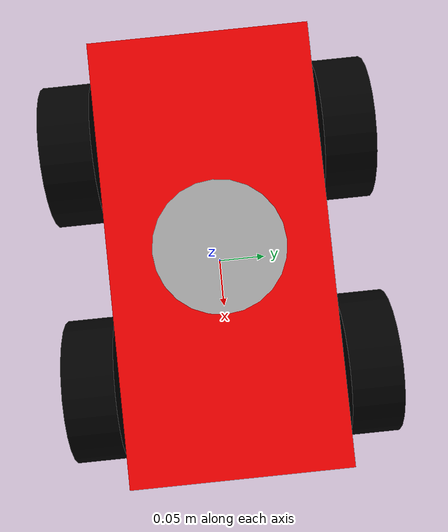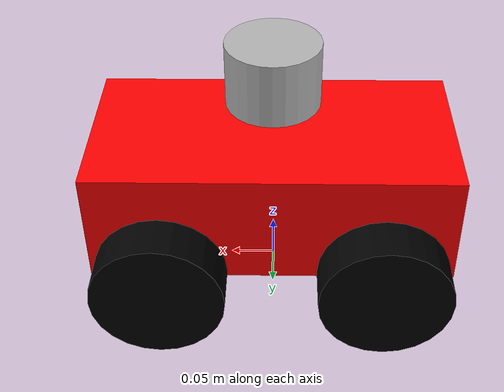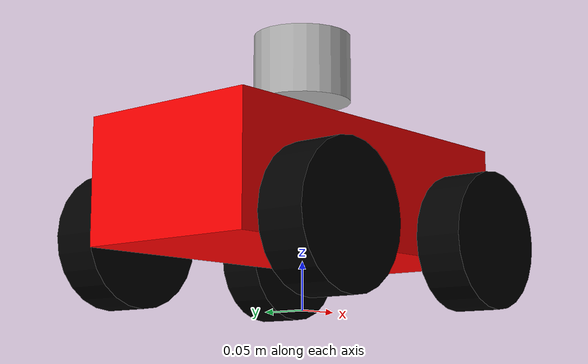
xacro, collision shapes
<?xml version="1.0"?>
<robot name="bot" xmlns:xacro="http://ros.org/wiki/xacro">

  <xacro:property name="base_length" value="0.400" />
  <xacro:property name="base_width" value="0.200" />
  <xacro:property name="base_height" value="0.129" />
  <xacro:property name="base_mass" value="10" />

  <xacro:property name="wheel_radius" value="0.07162" />
  <xacro:property name="wheel_width" value="0.05" />
  <xacro:property name="wheel_pos_x" value="0.120" />
  <xacro:property name="wheel_pos_y" value="0.1355" />
  <xacro:property name="wheel_pos_z" value="-0.04788" />
  <xacro:property name="wheel_mass" value=".6" />
  <xacro:property name="wheel_torque" value="20" />

  <xacro:include filename="$(find bot_description)/urdf/parts_urdf/base.urdf.xacro" />
  <xacro:include filename="$(find bot_description)/urdf/parts_urdf/wheel.urdf.xacro" />
  <xacro:include filename="$(find bot_description)/urdf/sensors/imu.urdf.xacro" />
  <xacro:include filename="$(find bot_description)/urdf/sensors/laser.urdf.xacro" />
  <xacro:include filename="$(find bot_description)/urdf/drivers/differential_drive.urdf.xacro" />

  <xacro:base
    length="${base_length}"
    width="${base_width}"
    height="${base_height}"
    mass="${base_mass}"
    wheel_radius="${wheel_radius}"
    wheel_pos_z="${wheel_pos_z}"
/>

  <xacro:wheel
    side="front_left"
    radius="${wheel_radius}"
    width="${wheel_width}"
    pos_x="${wheel_pos_x}"
    pos_y="${wheel_pos_y}"
    pos_z="${wheel_pos_z}"
    mass="${wheel_mass}"
  />

  <xacro:wheel
    side="front_right"
    radius="${wheel_radius}"
    width="${wheel_width}"
    pos_x="${wheel_pos_x}"
    pos_y="${-wheel_pos_y}"
    pos_z="${wheel_pos_z}"
    mass="${wheel_mass}"
  />
  <xacro:wheel
    side="rear_left"
    radius="${wheel_radius}"
    width="${wheel_width}"
    pos_x="${-wheel_pos_x}"
    pos_y="${wheel_pos_y}"
    pos_z="${wheel_pos_z}"
    mass="${wheel_mass}"
  />

  <xacro:wheel
    side="rear_right"
    radius="${wheel_radius}"
    width="${wheel_width}"
    pos_x="${-wheel_pos_x}"
    pos_y="${-wheel_pos_y}"
    pos_z="${wheel_pos_z}"
    mass="${wheel_mass}"
  />

  <xacro:imu/>

  <xacro:laser/>

  <xacro:diff_drive_controller
    wheel_separation="${wheel_pos_y * 2}"
    wheel_radius="${wheel_radius}"
    wheel_torque="${wheel_torque}"
  />
</robot>

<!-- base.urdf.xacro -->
<robot xmlns:xacro="http://ros.org/wiki/xacro">
  <xacro:macro name="base" params="length width height mass wheel_radius wheel_pos_z">
    <link name="base_footprint"/>

    <link name="base_link">
      <visual>
        <origin xyz="0 0 0" rpy="0 0 0"/>
        <geometry>
          <box size="${length} ${width} ${height}"/>
        </geometry>
        <material name="red">
          <color rgba="1.0 0.0 0.0 1.0"/>
        </material>
      </visual>

      <collision>
        <origin xyz="0 0 0" rpy="0 0 0"/>
        <geometry>
          <box size="${length} ${width} ${height}"/>
        </geometry>
      </collision>

      <inertial>
        <origin xyz="0 0 0" rpy="0 0 0"/>
        <mass value="${mass}"/>
        <inertia ixx="${(1/12) * mass * ((width  * width)  + (height * height))}" ixy="0.0" ixz="0.0"
                 iyy="${(1/12) * mass * ((length * length) + (height * height))}" iyz="0.0"
                 izz="${(1/12) * mass * ((length * length) + (width  * width))}"/>
      </inertial>
    </link>

    <gazebo reference="base_link">
        <material>Gazebo/Red</material>
    </gazebo>

    <joint name="base_to_footprint" type="fixed">
      <parent link="base_footprint"/>
      <child link="base_link"/>
      <origin xyz="0 0 ${wheel_radius - wheel_pos_z}" rpy="0 0 0"/>
    </joint>
  </xacro:macro>
</robot>

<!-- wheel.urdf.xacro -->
<robot xmlns:xacro="http://ros.org/wiki/xacro">
  <xacro:macro name="wheel" params="side radius width pos_x pos_y pos_z mass">
    <link name="${side}_wheel_link">
      <visual>
        <origin xyz="0 0 0" rpy="${pi/2} 0 0"/>
        <geometry>
          <cylinder radius="${radius}" length="${width}"/>
        </geometry>
        <material name="black">
            <color rgba="0.0 0.0 0.0 1.0"/>
        </material>
      </visual>
      <collision>
        <origin xyz="0 0 0" rpy="${pi/2} 0 0"/>
        <geometry>
          <cylinder radius="${radius}" length="${width}"/>
        </geometry>
      </collision>

      <inertial>
        <origin xyz="0 0 0" rpy="0 0 0"/>
        <mass value="${mass}"/>
        <inertia ixx="${(2/5) * mass * (radius * radius)}" ixy="0" ixz="0"
                 iyy="${(2/5) * mass * (radius * radius)}" iyz="0"
                 izz="${(2/5) * mass * (radius * radius)}" />
      </inertial>
    </link>

    <gazebo reference="${side}_wheel_link">
        <material>Gazebo/Black</material>
    </gazebo>

    <joint name="${side}_wheel_joint" type="continuous">
      <axis xyz="0 1 0" />
      <parent link="base_link"/>
      <child link="${side}_wheel_link"/>
      <origin xyz="${pos_x} ${pos_y} ${pos_z}" rpy="0 0 0"/>
    </joint>
  </xacro:macro>
</robot>

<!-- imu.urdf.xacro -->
<robot xmlns:xacro="http://ros.org/wiki/xacro">
  <xacro:macro name="imu">
    <link name="imu_link"/>

    <joint name="imu_to_base_link" type="fixed">
      <parent link="base_link"/>
      <child link="imu_link"/>
      <origin xyz="0 0 0" rpy="0 0 0"/>
    </joint>

    <gazebo reference="imu_link">
      <gravity>true</gravity>
      <sensor name="imu_sensor" type="imu">
      <always_on>true</always_on>
      <update_rate>20</update_rate>
      <visualize>true</visualize>
      <topic>__default_topic__</topic>
      <plugin filename="libgazebo_ros_imu_sensor.so" name="imu_plugin">
          <ros>
            <remapping>~/out:=imu/data</remapping>
          </ros>
          <topicName>imu/data</topicName>
          <bodyName>imu_link</bodyName>
          <updateRateHZ>10.0</updateRateHZ>
          <gaussianNoise>0.0</gaussianNoise>
          <xyzOffset>0 0 0</xyzOffset>
          <rpyOffset>0 0 0</rpyOffset>
          <frameName>imu_link</frameName>
          <initial_orientation_as_reference>false</initial_orientation_as_reference>
      </plugin>
      <pose>0 0 0 0 0 0</pose>
      </sensor>
    </gazebo>
  </xacro:macro>
</robot>

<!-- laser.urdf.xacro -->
<robot xmlns:xacro="http://ros.org/wiki/xacro">
  <xacro:include filename="$(find bot_description)/urdf/sensors/laser2d.urdf.xacro" />
  <xacro:include filename="$(find velodyne_description)/urdf/VLP-16.urdf.xacro" />
  <xacro:arg name="gpu" default="false"/>
  <xacro:property name="gpu" value="$(arg gpu)" />
  <xacro:arg name="organize_cloud" default="false"/>
  <xacro:property name="organize_cloud" value="$(arg organize_cloud)" />
  <xacro:macro name="laser">
    <xacro:VLP-16 parent="base_link" name="velodyne" topic="/velodyne_points" organize_cloud="${organize_cloud}" hz="10" min_range="0.3" samples="440" gpu="${gpu}">
      <origin xyz="0 0 0.1" rpy="0 0 0" />
    </xacro:VLP-16>
  </xacro:macro>

</robot>

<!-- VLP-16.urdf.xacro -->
<robot xmlns:xacro="http://www.ros.org/wiki/xacro" name="VLP-16">
  <xacro:property name="M_PI" value="3.1415926535897931" />
  <xacro:macro name="VLP-16" params="*origin parent:=base_link name:=velodyne tf_prefix:='' topic:=/velodyne_points organize_cloud:=false hz:=10 lasers:=16 samples:=1875 collision_range:=0.3 min_range:=0.9 max_range:=130.0 noise:=0.008 min_angle:=-${M_PI} max_angle:=${M_PI} gpu:=false">

    <joint name="${name}_base_mount_joint" type="fixed">
      <xacro:insert_block name="origin" />
      <parent link="${parent}"/>
      <child link="${name}_base_link"/>
    </joint>

    <link name="${name}_base_link">
      <inertial>
        <mass value="0.83"/>
        <origin xyz="0 0 0.03585"/>
        <inertia ixx="${(0.83 * (3.0*0.0516*0.0516 + 0.0717*0.0717)) / 12.0}" ixy="0" ixz="0"
          iyy="${(0.83 * (3.0*0.0516*0.0516 + 0.0717*0.0717)) / 12.0}" iyz="0"
          izz="${0.5 * 0.83 * (0.0516*0.0516)}"/>
      </inertial>
      <visual>
        <geometry>
          <mesh filename="package://velodyne_description/meshes/VLP16_base_1.dae" />
        </geometry>
      </visual>
      <visual>
        <geometry>
          <mesh filename="package://velodyne_description/meshes/VLP16_base_2.dae" />
        </geometry>
      </visual>
      <collision>
        <origin rpy="0 0 0" xyz="0 0 0.03585"/>
        <geometry>
          <cylinder radius="0.0516" length="0.0717"/>
        </geometry>
      </collision>
    </link>

    <joint name="${name}_base_scan_joint" type="fixed" >
      <origin xyz="0 0 0.0377" rpy="0 0 0" />
      <parent link="${name}_base_link" />
      <child link="${name}"/>
    </joint>

    <link name="${name}">
      <inertial>
        <mass value="0.01"/>
        <origin xyz="0 0 0"/>
        <inertia ixx="1e-7" ixy="0" ixz="0" iyy="1e-7" iyz="0" izz="1e-7"/>
      </inertial>
      <visual>
        <origin xyz="0 0 -0.0377" />
        <geometry>
          <mesh filename="package://velodyne_description/meshes/VLP16_scan.dae" />
        </geometry>
      </visual>
      <collision>
        <geometry>
          <sphere radius="0"/>
        </geometry>
      </collision>
    </link>

    <!-- Gazebo requires the velodyne_gazebo_plugins package -->
    <gazebo reference="${name}">
      <xacro:if value="${gpu}">
        <sensor type="gpu_ray" name="${name}-VLP16">
          <pose>0 0 0 0 0 0</pose>
          <visualize>true</visualize>
          <update_rate>${hz}</update_rate>
          <ray>
            <scan>
              <horizontal>
                <samples>${samples}</samples>
                <resolution>1</resolution>
                <min_angle>${min_angle}</min_angle>
                <max_angle>${max_angle}</max_angle>
              </horizontal>
              <vertical>
                <samples>${lasers}</samples>
                <resolution>1</resolution>
                <min_angle>-${15.0*M_PI/180.0}</min_angle>
                <max_angle> ${15.0*M_PI/180.0}</max_angle>
              </vertical>
            </scan>
            <range>
              <min>${collision_range}</min>
              <max>${max_range+1}</max>
              <resolution>0.001</resolution>
            </range>
            <noise>
              <type>gaussian</type>
              <mean>0.0</mean>
              <stddev>0.0</stddev>
            </noise>
          </ray>
          <plugin name="gazebo_ros_laser_controller" filename="libgazebo_ros_velodyne_laser.so">
            <ros>
              <namespace>/${name}</namespace>
              <remapping>~/out:=${topic}</remapping>
            </ros>
            <tf_prefix>${tf_prefix}</tf_prefix>
            <frame_name>${name}</frame_name>
            <organize_cloud>${organize_cloud}</organize_cloud>
            <min_range>${min_range}</min_range>
            <max_range>${max_range}</max_range>
            <gaussian_noise>${noise}</gaussian_noise>
          </plugin>
        </sensor>
      </xacro:if>
      <xacro:unless value="${gpu}">
        <sensor type="ray" name="${name}-VLP16">
          <pose>0 0 0 0 0 0</pose>
          <visualize>false</visualize>
          <update_rate>${hz}</update_rate>
          <ray>
            <scan>
              <horizontal>
                <samples>${samples}</samples>
                <resolution>1</resolution>
                <min_angle>${min_angle}</min_angle>
                <max_angle>${max_angle}</max_angle>
              </horizontal>
              <vertical>
                <samples>${lasers}</samples>
                <resolution>1</resolution>
                <min_angle>-${15.0*M_PI/180.0}</min_angle>
                <max_angle> ${15.0*M_PI/180.0}</max_angle>
              </vertical>
            </scan>
            <range>
              <min>${collision_range}</min>
              <max>${max_range+1}</max>
              <resolution>0.001</resolution>
            </range>
            <noise>
              <type>gaussian</type>
              <mean>0.0</mean>
              <stddev>0.0</stddev>
            </noise>
          </ray>
          <plugin name="gazebo_ros_laser_controller" filename="libgazebo_ros_velodyne_laser.so">
            <ros>
              <namespace>/${name}</namespace>
              <remapping>~/out:=${topic}</remapping>
            </ros>
            <tf_prefix>${tf_prefix}</tf_prefix>
            <frame_name>${name}</frame_name>
            <organize_cloud>${organize_cloud}</organize_cloud>
            <min_range>${min_range}</min_range>
            <max_range>${max_range}</max_range>
            <gaussian_noise>${noise}</gaussian_noise>
          </plugin>
        </sensor>
      </xacro:unless>
    </gazebo>

  </xacro:macro>
</robot>
